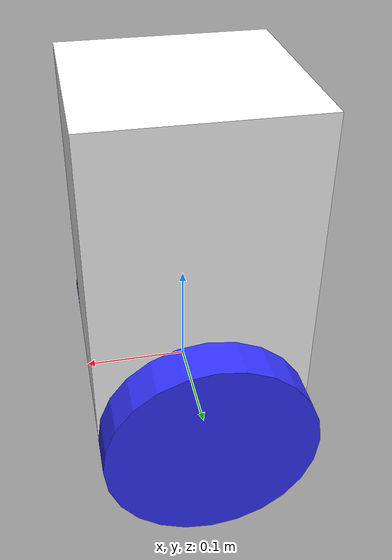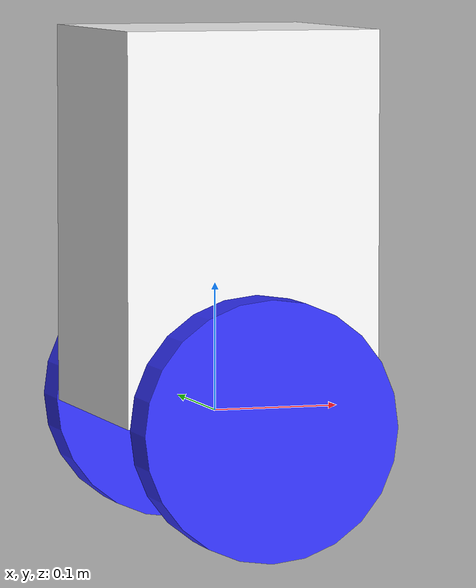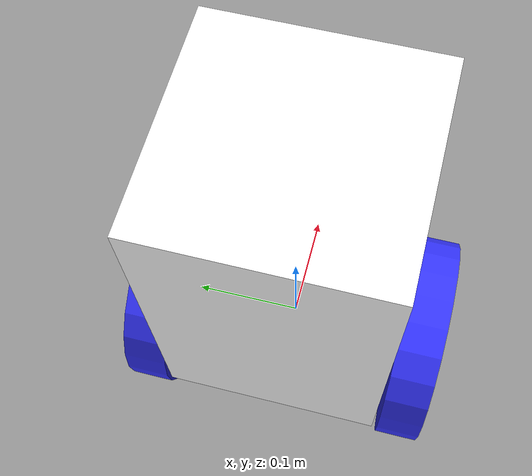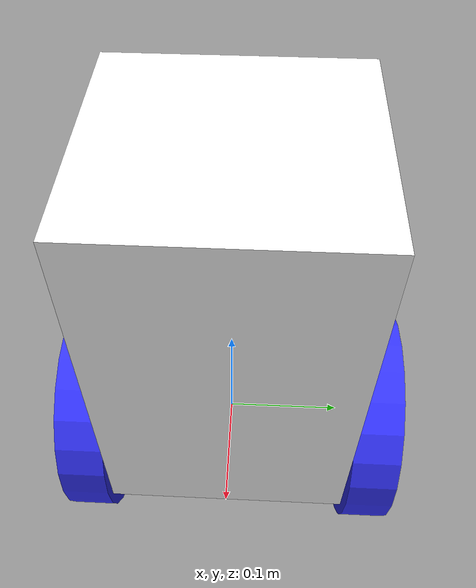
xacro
<?xml version="1.0"?>
<robot xmlns:xacro="http://www.ros.org/wiki/xacro">

    <xacro:include filename="inertial_macros.xacro" />

    <xacro:property name="chassis_length" value="0.335"/>
    <xacro:property name="chassis_width" value="0.265"/>
    <xacro:property name="chassis_height" value="0.138"/>
    <xacro:property name="chassis_mass" value="1.0"/>
    <xacro:property name="wheel_radius" value="0.033"/>
    <xacro:property name="wheel_thickness" value="0.026"/>
    <xacro:property name="wheel_mass" value="0.05"/>
    <xacro:property name="wheel_offset_x" value="0.226"/>
    <xacro:property name="wheel_offset_y" value="0.1485"/>
    <xacro:property name="wheel_offset_z" value="0.01"/>
    <xacro:property name="caster_wheel_radius" value="0.01"/>
    <xacro:property name="caster_wheel_mass" value="0.01"/>
    <xacro:property name="caster_wheel_offset_x" value="0.075"/>
    <xacro:property name="caster_wheel_offset_z" value="${wheel_offset_z - wheel_radius + caster_wheel_radius}"/>

    <material name="white">
        <color rgba="1 1 1 1" />
    </material>

    <material name="orange">
        <color rgba="1 0.3 0.1 1"/>
    </material>

    <material name="blue">
        <color rgba="0.2 0.2 1 1"/>
    </material>

    <material name="black">
        <color rgba="0 0 0 1"/>
    </material>

    <material name="red">
        <color rgba="1 0 0 1"/>
    </material>

    <link name="base_link">
    </link>

    <joint name="chassis_joint" type="fixed">
        <parent link="base_link"/>
        <child link="chassis"/>
        <origin xyz="-0.1 0 0"/>
    </joint>

    <link name="chassis">
        <visual>
            <origin xyz="0.1 0.0 0.15" rpy="0 0 0"/>
            <geometry>
                <box size="0.2 0.2 0.3"/>
            </geometry>
            <material name="white"/>
        </visual>
        <collision>
            <origin xyz="0.1 0.0 0.15" rpy="0 0 0"/>
            <geometry>
                <box size="0.2 0.2 0.3"/>
            </geometry>
        </collision>

        <xacro:inertial_box mass="0.5" x="0.2" y="0.2" z="0.3">
            <origin xyz="0.1 0 0.15" rpy="0 0 0"/>
        </xacro:inertial_box>

    </link>

    <!-- To see better the effect of diff drive: low friction on chassis -->
    <gazebo reference="chassis">
        <material>Gazebo/White</material>
        <mu1 value="0.1"/>
        <mu2 value="0.1"/>
        <sensor name="imu_sensor" type="imu">
        <always_on>1</always_on>
        <update_rate>10</update_rate>
        <visualize>true</visualize>
        <topic>imu</topic>
        </sensor>
    </gazebo>

    <joint name="left_wheel_joint" type="continuous">
        <parent link="base_link"/>
        <child link="left_wheel"/>
        <origin xyz="0 0.125 0" rpy="-${pi/2} 0 0"/>
        <axis xyz="0 0 1"/>
    </joint>

    <link name="left_wheel">
        <visual>
            <geometry>
                <cylinder length="0.04" radius="0.1" />
            </geometry>
            <material name="blue"/>
        </visual>
        <collision>
            <geometry>
                <cylinder length="0.04" radius="0.1" />
            </geometry>
        </collision>
        <xacro:inertial_cylinder mass="0.1" length="0.04" radius="0.1">
            <origin xyz="0 0 0" rpy="0 0 0"/>
        </xacro:inertial_cylinder>
    </link>

    <joint name="right_wheel_joint" type="continuous">
        <parent link="base_link"/>
        <child link="right_wheel"/>
        <origin xyz="0 -0.125 0" rpy="${pi/2} 0 0"/>
        <axis xyz="0 0 -1"/>
    </joint>

    <link name="right_wheel">
        <visual>
            <geometry>
                <cylinder length="0.04" radius="0.1" />
            </geometry>
            <material name="blue"/>
        </visual>
        <collision>
            <geometry>
                <cylinder length="0.04" radius="0.1" />
            </geometry>
        </collision>
        <xacro:inertial_cylinder mass="0.1" length="0.04" radius="0.1">
            <origin xyz="0 0 0" rpy="0 0 0"/>
        </xacro:inertial_cylinder>
    </link>

</robot>
